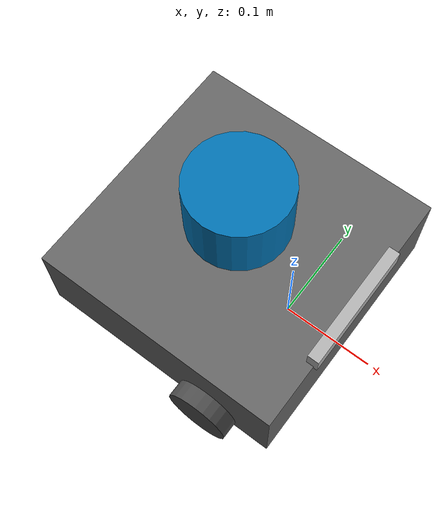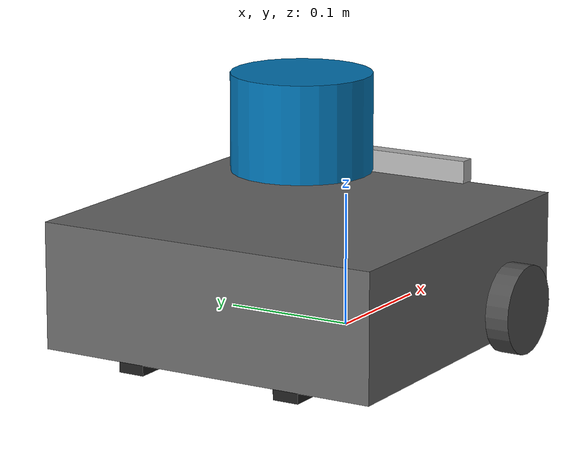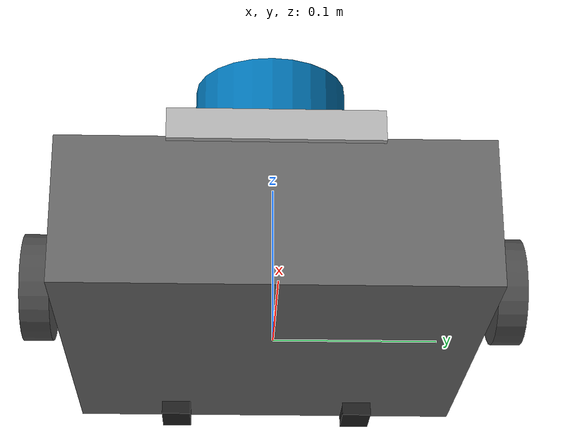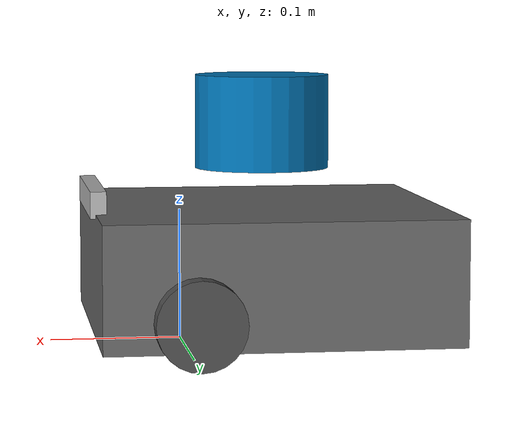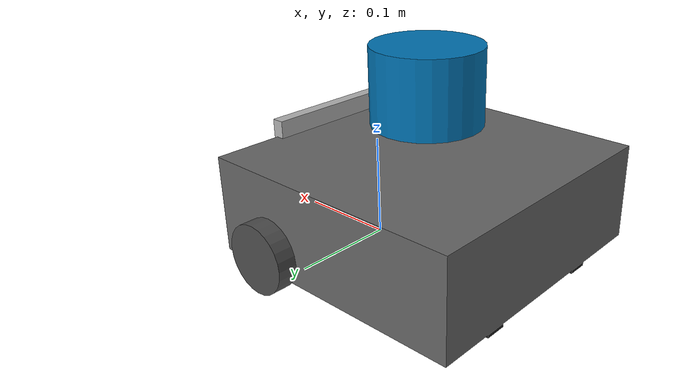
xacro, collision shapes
<?xml version="1.0" ?>
<robot name="turtlebot3_waffle" xmlns:xacro="http://ros.org/wiki/xacro">

  <xacro:arg name="laser_visual"  default="false"/>
  <xacro:arg name="camera_visual" default="false"/>
  <xacro:arg name="imu_visual"    default="false"/>
  <xacro:arg name="gpu" default="false"/>
  <xacro:property name="gpu" value="$(arg gpu)" />
  <xacro:arg name="organize_cloud" default="false"/>
  <xacro:property name="organize_cloud" value="$(arg organize_cloud)" />

  <!-- Include the VLP-16 -->
  <xacro:include filename="$(find velodyne_description)/urdf/VLP-16.urdf.xacro"/>

  <!-- Init colour -->
  <material name="black">
      <color rgba="0.0 0.0 0.0 1.0"/>
  </material>

  <material name="dark">
    <color rgba="0.3 0.3 0.3 1.0"/>
  </material>
  <material name="light_black">
    <color rgba="0.4 0.4 0.4 1.0"/>
  </material>

  <material name="blue">
    <color rgba="0.0 0.0 0.8 1.0"/>
  </material>

  <material name="green">
    <color rgba="0.0 0.8 0.0 1.0"/>
  </material>

  <material name="grey">
    <color rgba="0.5 0.5 0.5 1.0"/>
  </material>

  <material name="orange">
    <color rgba="${255/255} ${108/255} ${10/255} 1.0"/>
  </material>

  <material name="brown">
    <color rgba="${222/255} ${207/255} ${195/255} 1.0"/>
  </material>

  <material name="red">
    <color rgba="0.8 0.0 0.0 1.0"/>
  </material>

  <material name="white">
    <color rgba="1.0 1.0 1.0 1.0"/>
  </material>

  <xacro:property name="r200_cam_rgb_px" value="0.005"/>
  <xacro:property name="r200_cam_rgb_py" value="0.018"/>
  <xacro:property name="r200_cam_rgb_pz" value="0.013"/>
  <xacro:property name="r200_cam_depth_offset" value="0.01"/>

  <link name="base_footprint"/>

  <joint name="base_joint" type="fixed">
    <parent link="base_footprint"/>
    <child link="base_link" />
    <origin xyz="0 0 0.010" rpy="0 0 0"/>
  </joint>

  <link name="base_link">
    <visual>
      <origin xyz="-0.064 0 0.0" rpy="0 0 0"/>
      <geometry>
        <mesh filename="package://turtlebot3_description/meshes/bases/waffle_base.stl" scale="0.001 0.001 0.001"/>
      </geometry>
      <material name="light_black"/>
    </visual>

    <collision>
      <origin xyz="-0.064 0 0.047" rpy="0 0 0"/>
      <geometry>
        <box size="0.266 0.266 0.094"/>
      </geometry>
    </collision>

    <inertial>
      <origin xyz="0 0 0" rpy="0 0 0"/>
      <mass value="1.3729096e+00"/>
      <inertia ixx="8.7002718e-03" ixy="-4.7576583e-05" ixz="1.1160499e-04"
               iyy="8.6195418e-03" iyz="-3.5422299e-06"
               izz="1.4612727e-02" />
    </inertial>
  </link>

  <joint name="wheel_left_joint" type="continuous">
    <parent link="base_link"/>
    <child link="wheel_left_link"/>
    <origin xyz="0.0 0.144 0.023" rpy="-1.57 0 0"/>
    <axis xyz="0 0 1"/>
  </joint>

  <link name="wheel_left_link">
    <visual>
      <origin xyz="0 0 0" rpy="1.57 0 0"/>
      <geometry>
        <mesh filename="package://turtlebot3_description/meshes/wheels/left_tire.stl" scale="0.001 0.001 0.001"/>
      </geometry>
      <material name="dark"/>
    </visual>

    <collision>
      <origin xyz="0 0 0" rpy="0 0 0"/>
      <geometry>
        <cylinder length="0.018" radius="0.033"/>
      </geometry>
    </collision>

    <inertial>
      <origin xyz="0 0 0" />
      <mass value="2.8498940e-02" />
      <inertia ixx="1.1175580e-05" ixy="-4.2369783e-11" ixz="-5.9381719e-09"
               iyy="1.1192413e-05" iyz="-1.4400107e-11"
               izz="2.0712558e-05" />
      </inertial>
  </link>

  <joint name="wheel_right_joint" type="continuous">
    <parent link="base_link"/>
    <child link="wheel_right_link"/>
    <origin xyz="0.0 -0.144 0.023" rpy="-1.57 0 0"/>
    <axis xyz="0 0 1"/>
  </joint>

  <link name="wheel_right_link">
    <visual>
      <origin xyz="0 0 0" rpy="1.57 0 0"/>
      <geometry>
        <mesh filename="package://turtlebot3_description/meshes/wheels/right_tire.stl" scale="0.001 0.001 0.001"/>
      </geometry>
      <material name="dark"/>
    </visual>

    <collision>
      <origin xyz="0 0 0" rpy="0 0 0"/>
      <geometry>
        <cylinder length="0.018" radius="0.033"/>
      </geometry>
    </collision>

    <inertial>
      <origin xyz="0 0 0" />
      <mass value="2.8498940e-02" />
      <inertia ixx="1.1175580e-05" ixy="-4.2369783e-11" ixz="-5.9381719e-09"
               iyy="1.1192413e-05" iyz="-1.4400107e-11"
               izz="2.0712558e-05" />
      </inertial>
  </link>

  <joint name="caster_back_right_joint" type="fixed">
    <parent link="base_link"/>
    <child link="caster_back_right_link"/>
    <origin xyz="-0.177 -0.064 -0.004" rpy="-1.57 0 0"/>
  </joint>

  <link name="caster_back_right_link">
    <collision>
      <origin xyz="0 0.001 0" rpy="0 0 0"/>
      <geometry>
        <box size="0.030 0.009 0.020"/>
      </geometry>
    </collision>

    <inertial>
      <origin xyz="0 0 0" />
      <mass value="0.005" />
      <inertia ixx="0.001" ixy="0.0" ixz="0.0"
               iyy="0.001" iyz="0.0"
               izz="0.001" />
    </inertial>
  </link>

  <joint name="caster_back_left_joint" type="fixed">
    <parent link="base_link"/>
    <child link="caster_back_left_link"/>
    <origin xyz="-0.177 0.064 -0.004" rpy="-1.57 0 0"/>
  </joint>

  <link name="caster_back_left_link">
    <collision>
      <origin xyz="0 0.001 0" rpy="0 0 0"/>
      <geometry>
        <box size="0.030 0.009 0.020"/>
      </geometry>
    </collision>

    <inertial>
      <origin xyz="0 0 0" />
      <mass value="0.005" />
      <inertia ixx="0.001" ixy="0.0" ixz="0.0"
               iyy="0.001" iyz="0.0"
               izz="0.001" />
    </inertial>
  </link>

  <joint name="imu_joint" type="fixed">
    <parent link="base_link"/>
    <child link="imu_link"/>
    <origin xyz="0.0 0 0.068" rpy="0 0 0"/>
  </joint>

  <link name="imu_link"/>

  <joint name="camera_joint" type="fixed">
    <origin xyz="0.064 -0.065 0.094" rpy="0 0 0"/>
    <parent link="base_link"/>
    <child link="camera_link"/>
  </joint>

  <link name="camera_link">
    <visual>
     <origin xyz="0 0 0" rpy="1.57 0 1.57"/>
      <geometry>
       <mesh filename="package://turtlebot3_description/meshes/sensors/r200.dae" />
      </geometry>
    </visual>
    <collision>
      <origin xyz="0.003 0.065 0.007" rpy="0 0 0"/>
      <geometry>
        <box size="0.012 0.132 0.020"/>
      </geometry>
    </collision>

    <!-- This inertial field needs doesn't contain reliable data!! -->
  </link>

  <joint name="camera_rgb_joint" type="fixed">
    <origin xyz="${r200_cam_rgb_px} ${r200_cam_rgb_py} ${r200_cam_rgb_pz}" rpy="0 0 0"/>
    <parent link="camera_link"/>
    <child link="camera_rgb_frame"/>
  </joint>
  <link name="camera_rgb_frame"/>

  <joint name="camera_rgb_optical_joint" type="fixed">
    <origin xyz="0 0 0" rpy="-1.57 0 -1.57"/>
    <parent link="camera_rgb_frame"/>
    <child link="camera_rgb_optical_frame"/>
  </joint>
  <link name="camera_rgb_optical_frame"/>

  <joint name="camera_depth_joint" type="fixed">
    <origin xyz="${r200_cam_rgb_px} ${r200_cam_rgb_py + r200_cam_depth_offset} ${r200_cam_rgb_pz}" rpy="0 0 0"/>
    <parent link="camera_link"/>
    <child link="camera_depth_frame"/>
  </joint>
  <link name="camera_depth_frame"/>

  <joint name="camera_depth_optical_joint" type="fixed">
    <origin xyz="0 0 0" rpy="-1.57 0 -1.57"/>
    <parent link="camera_depth_frame"/>
    <child link="camera_depth_optical_frame"/>
  </joint>
  <link name="camera_depth_optical_frame"/>

  <gazebo reference="base_link">
    <material>Gazebo/DarkGrey</material>
  </gazebo>

  <gazebo reference="wheel_left_link">
    <mu1>0.1</mu1>
    <mu2>0.1</mu2>
    <kp>500000.0</kp>
    <kd>10.0</kd>
    <min_depth>0.001</min_depth>
    <max_vel>0.1</max_vel>
    <fdir1>1 0 0</fdir1>
    <material>Gazebo/FlatBlack</material>
  </gazebo>

  <gazebo reference="wheel_right_link">
    <mu1>0.1</mu1>
    <mu2>0.1</mu2>
    <kp>500000.0</kp>
    <kd>10.0</kd>
    <min_depth>0.001</min_depth>
    <max_vel>0.1</max_vel>
    <fdir1>1 0 0</fdir1>
    <material>Gazebo/FlatBlack</material>
  </gazebo>

  <gazebo reference="caster_back_right_link">
    <mu1>0.1</mu1>
    <mu2>0.1</mu2>
    <kp>1000000.0</kp>
    <kd>100.0</kd>
    <min_depth>0.001</min_depth>
    <max_vel>1.0</max_vel>
    <material>Gazebo/FlatBlack</material>
  </gazebo>

  <gazebo reference="caster_back_left_link">
    <mu1>0.1</mu1>
    <mu2>0.1</mu2>
    <kp>1000000.0</kp>
    <kd>100.0</kd>
    <min_depth>0.001</min_depth>
    <max_vel>1.0</max_vel>
    <material>Gazebo/FlatBlack</material>
  </gazebo>

  <gazebo reference="imu_link">
    <sensor type="imu" name="imu">
      <always_on>true</always_on>
      <visualize>$(arg imu_visual)</visualize>
    </sensor>
    <material>Gazebo/Grey</material>
  </gazebo>

  <gazebo>
    <plugin name="turtlebot3_waffle_controller" filename="libgazebo_ros_diff_drive.so">

      <ros>
        <remapping>cmd_vel:=/cmd_vel</remapping>
        <remapping>odom:=/odom</remapping>
      </ros>

      <odometry_frame>odom</odometry_frame>
      <publish_odom_tf>true</publish_odom_tf>
      <robot_base_frame>base_footprint</robot_base_frame>
      <publish_wheel_tf>false</publish_wheel_tf>
      <publish_tf>true</publish_tf>
      <legacy_mode>false</legacy_mode>
      <update_rate>30</update_rate>
      <left_joint>wheel_left_joint</left_joint>
      <right_joint>wheel_right_joint</right_joint>
      <wheel_separation>0.287</wheel_separation>
      <wheel_diameter>0.066</wheel_diameter>
      <wheel_acceleration>1</wheel_acceleration>
      <wheel_torque>10</wheel_torque>
      <ros_debug_level>na</ros_debug_level>
    </plugin>
  </gazebo>

  <gazebo>
    <plugin name="imu_plugin" filename="libgazebo_ros_imu.so">

      <ros>
        <remapping>~/out:=/imu</remapping>
      </ros>

      <always_on>true</always_on>
      <frame_name>imu_link</frame_name>
      <gaussian_noise>0.0</gaussian_noise>
      <update_rate>0</update_rate>

      <imu>
        <noise>
          <type>gaussian</type>
          <rate>
            <mean>0.0</mean>
            <stddev>2e-4</stddev>
            <bias_mean>0.0000075</bias_mean>
            <bias_stddev>0.0000008</bias_stddev>
          </rate>
          <accel>
            <mean>0.0</mean>
            <stddev>1.7e-2</stddev>
            <bias_mean>0.1</bias_mean>
            <bias_stddev>0.001</bias_stddev>
          </accel>
        </noise>
      </imu>
    </plugin>
  </gazebo>

  <gazebo reference="camera_rgb_frame">
    <sensor type="depth" name="realsense_R200">
      <always_on>true</always_on>
      <visualize>$(arg camera_visual)</visualize>
      <camera>
          <horizontal_fov>1.3439</horizontal_fov>
          <image>
              <width>1920</width>
              <height>1080</height>
              <format>R8G8B8</format>
          </image>
          <depth_camera></depth_camera>
          <clip>
              <near>0.03</near>
              <far>100</far>
          </clip>
      </camera>
      <plugin name="camera_driver" filename="libgazebo_ros_camera.so">
        <frame_name>camera_rgb_optical_frame</frame_name>
        <ros>
          <remapping>image_raw:=img_raw</remapping>
          <remapping>camera_info:=cam_info</remapping>
        </ros>
        <hack_baseline>0</hack_baseline>
      </plugin>
    </sensor>
  </gazebo>

  <!-- Add LiDAR model -->
  <xacro:VLP-16 parent="base_link" name="velodyne" topic="/velodyne_points" organize_cloud="${organize_cloud}" hz="10" samples="440" gpu="${gpu}">
    <origin xyz="-0.064 0 0.122" rpy="0 0 0" />
  </xacro:VLP-16>

</robot>

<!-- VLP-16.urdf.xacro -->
<robot xmlns:xacro="http://www.ros.org/wiki/xacro" name="VLP-16">
  <xacro:property name="M_PI" value="3.1415926535897931" />
  <xacro:macro name="VLP-16" params="*origin is_sim:=true parent:=base_link name:=velodyne tf_prefix:='' topic:=/velodyne_points organize_cloud:=false hz:=10 lasers:=16 samples:=1875 collision_range:=0.3 min_range:=0.0 max_range:=100.0 noise:=0.008 min_angle:=-${M_PI} max_angle:=${M_PI} gpu:=false">

    <joint name="${name}_base_mount_joint" type="fixed">
      <xacro:insert_block name="origin" />
      <parent link="${parent}"/>
      <child link="${name}_base_link"/>
    </joint>

    <link name="${name}_base_link">
      <inertial>
        <mass value="0.83"/>
        <origin xyz="0 0 0.03585"/>
        <inertia ixx="${(0.83 * (3.0*0.0516*0.0516 + 0.0717*0.0717)) / 12.0}" ixy="0" ixz="0"
          iyy="${(0.83 * (3.0*0.0516*0.0516 + 0.0717*0.0717)) / 12.0}" iyz="0"
          izz="${0.5 * 0.83 * (0.0516*0.0516)}"/>
      </inertial>
      <visual>
        <geometry>
          <mesh filename="package://velodyne_description/meshes/VLP16_base_1.dae" />
        </geometry>
      </visual>
      <visual>
        <geometry>
          <mesh filename="package://velodyne_description/meshes/VLP16_base_2.dae" />
        </geometry>
      </visual>
      <collision>
        <origin rpy="0 0 0" xyz="0 0 0.03585"/>
        <geometry>
          <cylinder radius="0.0516" length="0.0717"/>
        </geometry>
      </collision>
    </link>

    <joint name="${name}_base_scan_joint" type="fixed" >
      <origin xyz="0 0 0.0377" rpy="0 0 0" />
      <parent link="${name}_base_link" />
      <child link="${name}"/>
    </joint>

    <link name="${name}">
      <inertial>
        <mass value="0.01"/>
        <origin xyz="0 0 0"/>
        <inertia ixx="1e-7" ixy="0" ixz="0" iyy="1e-7" iyz="0" izz="1e-7"/>
      </inertial>
      <visual>
        <origin xyz="0 0 -0.0377" />
        <geometry>
          <mesh filename="package://velodyne_description/meshes/VLP16_scan.dae" />
        </geometry>
      </visual>
      <collision>
        <geometry>
          <sphere radius="0"/>
        </geometry>
      </collision>
    </link>

    <!-- Gazebo requires the velodyne_gazebo_plugins package -->
    <xacro:if value="${is_sim}">
        <gazebo reference="${name}">
            <xacro:if value="${gpu}">
                <sensor type="gpu_ray" name="${name}-VLP16">
                <pose>0 0 0 0 0 0</pose>
                <visualize>false</visualize>
                <update_rate>${hz}</update_rate>
                <ray>
                    <scan>
                    <horizontal>
                        <samples>${samples}</samples>
                        <resolution>1</resolution>
                        <min_angle>${min_angle}</min_angle>
                        <max_angle>${max_angle}</max_angle>
                    </horizontal>
                    <vertical>
                        <samples>${lasers}</samples>
                        <resolution>1</resolution>
                        <min_angle>-${15.0*M_PI/180.0}</min_angle>
                        <max_angle> ${15.0*M_PI/180.0}</max_angle>
                    </vertical>
                    </scan>
                    <range>
                    <min>${collision_range}</min>
                    <max>${max_range+1}</max>
                    <resolution>0.001</resolution>
                    </range>
                    <noise>
                    <type>gaussian</type>
                    <mean>0.0</mean>
                    <stddev>0.0</stddev>
                    </noise>
                </ray>
                <plugin name="gazebo_ros_laser_controller" filename="libgazebo_ros_velodyne_laser.so">
                    <ros>
                    <namespace>/${name}</namespace>
                    <remapping>~/out:=${topic}</remapping>
                    </ros>
                    <tf_prefix>${tf_prefix}</tf_prefix>
                    <frame_name>${name}</frame_name>
                    <organize_cloud>${organize_cloud}</organize_cloud>
                    <min_range>${min_range}</min_range>
                    <max_range>${max_range}</max_range>
                    <gaussian_noise>${noise}</gaussian_noise>
                </plugin>
                </sensor>
            </xacro:if>
            <xacro:unless value="${gpu}">
                <sensor type="ray" name="${name}-VLP16">
                <pose>0 0 0 0 0 0</pose>
                <visualize>false</visualize>
                <update_rate>${hz}</update_rate>
                <ray>
                    <scan>
                    <horizontal>
                        <samples>${samples}</samples>
                        <resolution>1</resolution>
                        <min_angle>${min_angle}</min_angle>
                        <max_angle>${max_angle}</max_angle>
                    </horizontal>
                    <vertical>
                        <samples>${lasers}</samples>
                        <resolution>1</resolution>
                        <min_angle>-${15.0*M_PI/180.0}</min_angle>
                        <max_angle> ${15.0*M_PI/180.0}</max_angle>
                    </vertical>
                    </scan>
                    <range>
                    <min>${collision_range}</min>
                    <max>${max_range+1}</max>
                    <resolution>0.001</resolution>
                    </range>
                    <noise>
                    <type>gaussian</type>
                    <mean>0.0</mean>
                    <stddev>0.0</stddev>
                    </noise>
                </ray>
                <plugin name="gazebo_ros_laser_controller" filename="libgazebo_ros_velodyne_laser.so">
                    <ros>
                    <namespace>/${name}</namespace>
                    <remapping>~/out:=${topic}</remapping>
                    </ros>
                    <tf_prefix>${tf_prefix}</tf_prefix>
                    <frame_name>${name}</frame_name>
                    <organize_cloud>${organize_cloud}</organize_cloud>
                    <min_range>${min_range}</min_range>
                    <max_range>${max_range}</max_range>
                    <gaussian_noise>${noise}</gaussian_noise>
                </plugin>
                </sensor>
            </xacro:unless>
        </gazebo>
    </xacro:if>

  </xacro:macro>
</robot>
